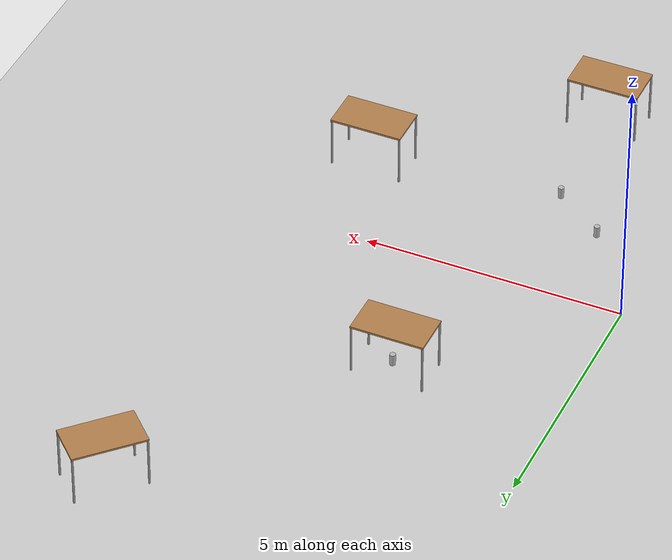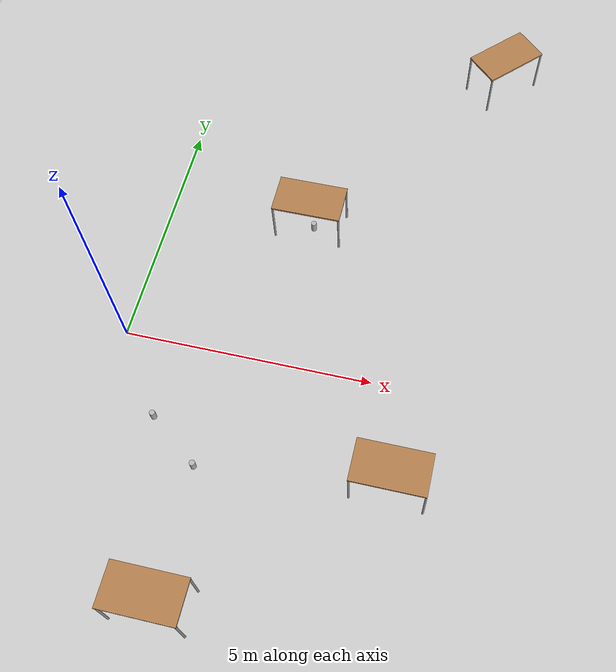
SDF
<sdf version="1.6">
 <world name="world_1">
  <light name="sun" type="directional">
   <pose>0 0 10 0 -0 0</pose>
   <diffuse>0.8 0.8 0.8 1</diffuse>
   <specular>0.1 0.1 0.1 1</specular>
   <attenuation>
    <range>1000</range>
    <constant>0.9</constant>
    <linear>0.01</linear>
    <quadratic>0.001</quadratic>
   </attenuation>
   <direction>-0.5 0.5 -1</direction>
  </light>
  <model name="ground_plane">
   <static>1</static>
   <link name="link">
    <collision name="collision">
     <geometry><plane><normal>0 0 1</normal><size>100 100</size></plane></geometry>
     <surface><friction><ode><mu>100</mu><mu2>50</mu2></ode></friction></surface>
    </collision>
    <visual name="visual">
     <cast_shadows>0</cast_shadows>
     <geometry><plane><normal>0 0 1</normal><size>100 100</size></plane></geometry>
     <material>
      <script><uri>file://media/materials/scripts/gazebo.material</uri><name>Gazebo/Grey</name></script>
     </material>
    </visual>
   </link>
  </model>
  <gravity>0 0 -9.8</gravity>
  <magnetic_field>6e-06 2.3e-05 -4.2e-05</magnetic_field>
  <atmosphere type="adiabatic"/>
  <physics name="default_physics" default="0" type="ode">
   <max_step_size>0.001</max_step_size>
   <real_time_factor>1</real_time_factor>
   <real_time_update_rate>1000</real_time_update_rate>
  </physics>
  <scene><ambient>0.4 0.4 0.4 1</ambient><background>0.7 0.7 0.7 1</background><shadows>1</shadows></scene>
  <spherical_coordinates>
   <surface_model>EARTH_WGS84</surface_model>
   <latitude_deg>0</latitude_deg>
   <longitude_deg>0</longitude_deg>
   <elevation>0</elevation>
   <heading_deg>0</heading_deg>
  </spherical_coordinates>
  <model name="table">
   <static>0</static>
   <link name="link">
    <collision name="surface">
     <pose>0 0 1 0 -0 0</pose>
     <geometry><box><size>1.5 0.8 0.03</size></box></geometry>
     <surface><friction><ode><mu>0.6</mu><mu2>0.6</mu2></ode></friction></surface>
    </collision>
    <visual name="visual1">
     <pose>0 0 1 0 -0 0</pose>
     <geometry><box><size>1.4 0.8 0.04</size></box></geometry>
     <material>
      <script><uri>file://media/materials/scripts/gazebo.material</uri><name>Gazebo/Wood</name></script>
     </material>
    </visual>
    <collision name="front_left_leg">
     <pose>0.68 0.38 0.5 0 -0 0</pose>
     <geometry><cylinder><radius>0.02</radius><length>1</length></cylinder></geometry>
    </collision>
    <visual name="front_left_leg">
     <pose>0.68 0.38 0.5 0 -0 0</pose>
     <geometry><cylinder><radius>0.02</radius><length>1</length></cylinder></geometry>
     <material>
      <script><uri>file://media/materials/scripts/gazebo.material</uri><name>Gazebo/Grey</name></script>
     </material>
    </visual>
    <collision name="front_right_leg">
     <pose>0.68 -0.38 0.5 0 -0 0</pose>
     <geometry><cylinder><radius>0.02</radius><length>1</length></cylinder></geometry>
    </collision>
    <visual name="front_right_leg">
     <pose>0.68 -0.38 0.5 0 -0 0</pose>
     <geometry><cylinder><radius>0.02</radius><length>1</length></cylinder></geometry>
     <material>
      <script><uri>file://media/materials/scripts/gazebo.material</uri><name>Gazebo/Grey</name></script>
     </material>
    </visual>
    <collision name="back_right_leg">
     <pose>-0.68 -0.38 0.5 0 -0 0</pose>
     <geometry><cylinder><radius>0.02</radius><length>1</length></cylinder></geometry>
    </collision>
    <visual name="back_right_leg">
     <pose>-0.68 -0.38 0.5 0 -0 0</pose>
     <geometry><cylinder><radius>0.02</radius><length>1</length></cylinder></geometry>
     <material>
      <script><uri>file://media/materials/scripts/gazebo.material</uri><name>Gazebo/Grey</name></script>
     </material>
    </visual>
    <collision name="back_left_leg">
     <pose>-0.68 0.38 0.5 0 -0 0</pose>
     <geometry><cylinder><radius>0.02</radius><length>1</length></cylinder></geometry>
    </collision>
    <visual name="back_left_leg">
     <pose>-0.68 0.38 0.5 0 -0 0</pose>
     <geometry><cylinder><radius>0.02</radius><length>1</length></cylinder></geometry>
     <material>
      <script><uri>file://media/materials/scripts/gazebo.material</uri><name>Gazebo/Grey</name></script>
     </material>
    </visual>
    <inertial>
     <inertia><ixx>1</ixx><ixy>0</ixy><ixz>0</ixz><iyy>1</iyy><iyz>0</iyz><izz>1</izz></inertia>
     <mass>1</mass>
    </inertial>
   </link>
   <pose>2.23628 -4.9084 0.184672 0 -0.003178 0</pose>
  </model>
  <model name="table_clone">
   <static>0</static>
   <link name="link">
    <collision name="surface">
     <pose>0 0 1 0 -0 0</pose>
     <geometry><box><size>1.5 0.8 0.03</size></box></geometry>
     <surface><friction><ode><mu>0.6</mu><mu2>0.6</mu2></ode></friction></surface>
    </collision>
    <visual name="visual1">
     <pose>0 0 1 0 -0 0</pose>
     <geometry><box><size>1.4 0.8 0.04</size></box></geometry>
     <material>
      <script><uri>file://media/materials/scripts/gazebo.material</uri><name>Gazebo/Wood</name></script>
     </material>
    </visual>
    <collision name="front_left_leg">
     <pose>0.68 0.38 0.5 0 -0 0</pose>
     <geometry><cylinder><radius>0.02</radius><length>1</length></cylinder></geometry>
    </collision>
    <visual name="front_left_leg">
     <pose>0.68 0.38 0.5 0 -0 0</pose>
     <geometry><cylinder><radius>0.02</radius><length>1</length></cylinder></geometry>
     <material>
      <script><uri>file://media/materials/scripts/gazebo.material</uri><name>Gazebo/Grey</name></script>
     </material>
    </visual>
    <collision name="front_right_leg">
     <pose>0.68 -0.38 0.5 0 -0 0</pose>
     <geometry><cylinder><radius>0.02</radius><length>1</length></cylinder></geometry>
    </collision>
    <visual name="front_right_leg">
     <pose>0.68 -0.38 0.5 0 -0 0</pose>
     <geometry><cylinder><radius>0.02</radius><length>1</length></cylinder></geometry>
     <material>
      <script><uri>file://media/materials/scripts/gazebo.material</uri><name>Gazebo/Grey</name></script>
     </material>
    </visual>
    <collision name="back_right_leg">
     <pose>-0.68 -0.38 0.5 0 -0 0</pose>
     <geometry><cylinder><radius>0.02</radius><length>1</length></cylinder></geometry>
    </collision>
    <visual name="back_right_leg">
     <pose>-0.68 -0.38 0.5 0 -0 0</pose>
     <geometry><cylinder><radius>0.02</radius><length>1</length></cylinder></geometry>
     <material>
      <script><uri>file://media/materials/scripts/gazebo.material</uri><name>Gazebo/Grey</name></script>
     </material>
    </visual>
    <collision name="back_left_leg">
     <pose>-0.68 0.38 0.5 0 -0 0</pose>
     <geometry><cylinder><radius>0.02</radius><length>1</length></cylinder></geometry>
    </collision>
    <visual name="back_left_leg">
     <pose>-0.68 0.38 0.5 0 -0 0</pose>
     <geometry><cylinder><radius>0.02</radius><length>1</length></cylinder></geometry>
     <material>
      <script><uri>file://media/materials/scripts/gazebo.material</uri><name>Gazebo/Grey</name></script>
     </material>
    </visual>
    <inertial>
     <inertia><ixx>1</ixx><ixy>0</ixy><ixz>0</ixz><iyy>1</iyy><iyz>0</iyz><izz>1</izz></inertia>
     <mass>1</mass>
    </inertial>
   </link>
   <pose>5.75509 -1.97683 0.195844 0 -0.003177 0</pose>
  </model>
  <model name="table_clone_0">
   <static>0</static>
   <link name="link">
    <collision name="surface">
     <pose>0 0 1 0 -0 0</pose>
     <geometry><box><size>1.5 0.8 0.03</size></box></geometry>
     <surface><friction><ode><mu>0.6</mu><mu2>0.6</mu2></ode></friction></surface>
    </collision>
    <visual name="visual1">
     <pose>0 0 1 0 -0 0</pose>
     <geometry><box><size>1.4 0.8 0.04</size></box></geometry>
     <material>
      <script><uri>file://media/materials/scripts/gazebo.material</uri><name>Gazebo/Wood</name></script>
     </material>
    </visual>
    <collision name="front_left_leg">
     <pose>0.68 0.38 0.5 0 -0 0</pose>
     <geometry><cylinder><radius>0.02</radius><length>1</length></cylinder></geometry>
    </collision>
    <visual name="front_left_leg">
     <pose>0.68 0.38 0.5 0 -0 0</pose>
     <geometry><cylinder><radius>0.02</radius><length>1</length></cylinder></geometry>
     <material>
      <script><uri>file://media/materials/scripts/gazebo.material</uri><name>Gazebo/Grey</name></script>
     </material>
    </visual>
    <collision name="front_right_leg">
     <pose>0.68 -0.38 0.5 0 -0 0</pose>
     <geometry><cylinder><radius>0.02</radius><length>1</length></cylinder></geometry>
    </collision>
    <visual name="front_right_leg">
     <pose>0.68 -0.38 0.5 0 -0 0</pose>
     <geometry><cylinder><radius>0.02</radius><length>1</length></cylinder></geometry>
     <material>
      <script><uri>file://media/materials/scripts/gazebo.material</uri><name>Gazebo/Grey</name></script>
     </material>
    </visual>
    <collision name="back_right_leg">
     <pose>-0.68 -0.38 0.5 0 -0 0</pose>
     <geometry><cylinder><radius>0.02</radius><length>1</length></cylinder></geometry>
    </collision>
    <visual name="back_right_leg">
     <pose>-0.68 -0.38 0.5 0 -0 0</pose>
     <geometry><cylinder><radius>0.02</radius><length>1</length></cylinder></geometry>
     <material>
      <script><uri>file://media/materials/scripts/gazebo.material</uri><name>Gazebo/Grey</name></script>
     </material>
    </visual>
    <collision name="back_left_leg">
     <pose>-0.68 0.38 0.5 0 -0 0</pose>
     <geometry><cylinder><radius>0.02</radius><length>1</length></cylinder></geometry>
    </collision>
    <visual name="back_left_leg">
     <pose>-0.68 0.38 0.5 0 -0 0</pose>
     <geometry><cylinder><radius>0.02</radius><length>1</length></cylinder></geometry>
     <material>
      <script><uri>file://media/materials/scripts/gazebo.material</uri><name>Gazebo/Grey</name></script>
     </material>
    </visual>
    <inertial>
     <inertia><ixx>1</ixx><ixy>0</ixy><ixz>0</ixz><iyy>1</iyy><iyz>0</iyz><izz>1</izz></inertia>
     <mass>1</mass>
    </inertial>
   </link>
   <pose>3.03477 3.17586 0.187202 0 -0.003177 0</pose>
  </model>
  <model name="beer">
   <link name="link">
    <pose>0 0 0.115 0 -0 0</pose>
    <inertial>
     <mass>0.39</mass>
     <inertia><ixx>0.00058</ixx><ixy>0</ixy><ixz>0</ixz><iyy>0.00058</iyy><iyz>0</iyz><izz>0.00019</izz></inertia>
    </inertial>
    <collision name="collision">
     <geometry><cylinder><radius>0.055</radius><length>0.23</length></cylinder></geometry>
    </collision>
    <visual name="visual">
     <geometry><cylinder><radius>0.055</radius><length>0.23</length></cylinder></geometry>
     <material>
      <script>
       <uri>model://beer/materials/scripts</uri>
       <uri>model://beer/materials/textures</uri>
       <name>Beer/Diffuse</name>
      </script>
     </material>
    </visual>
   </link>
   <pose>1.15387 -1.64954 0.181237 4.8e-05 -0.003214 0.001093</pose>
  </model>
  <model name="beer_0">
   <link name="link">
    <pose>0 0 0.115 0 -0 0</pose>
    <inertial>
     <mass>0.39</mass>
     <inertia><ixx>0.00058</ixx><ixy>0</ixy><ixz>0</ixz><iyy>0.00058</iyy><iyz>0</iyz><izz>0.00019</izz></inertia>
    </inertial>
    <collision name="collision">
     <geometry><cylinder><radius>0.055</radius><length>0.23</length></cylinder></geometry>
    </collision>
    <visual name="visual">
     <geometry><cylinder><radius>0.055</radius><length>0.23</length></cylinder></geometry>
     <material>
      <script>
       <uri>model://beer/materials/scripts</uri>
       <uri>model://beer/materials/textures</uri>
       <name>Beer/Diffuse</name>
      </script>
     </material>
    </visual>
   </link>
   <pose>2.17352 -2.42003 0.184464 -1e-05 -0.003167 6.3e-05</pose>
  </model>
  <model name="beer_0_clone">
   <link name="link">
    <pose>0 0 0.115 0 -0 0</pose>
    <inertial>
     <mass>0.39</mass>
     <inertia><ixx>0.00058</ixx><ixy>0</ixy><ixz>0</ixz><iyy>0.00058</iyy><iyz>0</iyz><izz>0.00019</izz></inertia>
    </inertial>
    <collision name="collision">
     <geometry><cylinder><radius>0.055</radius><length>0.23</length></cylinder></geometry>
    </collision>
    <visual name="visual">
     <geometry><cylinder><radius>0.055</radius><length>0.23</length></cylinder></geometry>
     <material>
      <script>
       <uri>model://beer/materials/scripts</uri>
       <uri>model://beer/materials/textures</uri>
       <name>Beer/Diffuse</name>
      </script>
     </material>
    </visual>
   </link>
   <pose>3.11034 3.11248 0.18744 0 -0.003176 0.000142</pose>
  </model>
  <model name="table_clone_0_clone">
   <static>0</static>
   <link name="link">
    <collision name="surface">
     <pose>0 0 1 0 -0 0</pose>
     <geometry><box><size>1.5 0.8 0.03</size></box></geometry>
     <surface><friction><ode><mu>0.6</mu><mu2>0.6</mu2></ode></friction></surface>
    </collision>
    <visual name="visual1">
     <pose>0 0 1 0 -0 0</pose>
     <geometry><box><size>1.4 0.8 0.04</size></box></geometry>
     <material>
      <script><uri>file://media/materials/scripts/gazebo.material</uri><name>Gazebo/Wood</name></script>
     </material>
    </visual>
    <collision name="front_left_leg">
     <pose>0.68 0.38 0.5 0 -0 0</pose>
     <geometry><cylinder><radius>0.02</radius><length>1</length></cylinder></geometry>
    </collision>
    <visual name="front_left_leg">
     <pose>0.68 0.38 0.5 0 -0 0</pose>
     <geometry><cylinder><radius>0.02</radius><length>1</length></cylinder></geometry>
     <material>
      <script><uri>file://media/materials/scripts/gazebo.material</uri><name>Gazebo/Grey</name></script>
     </material>
    </visual>
    <collision name="front_right_leg">
     <pose>0.68 -0.38 0.5 0 -0 0</pose>
     <geometry><cylinder><radius>0.02</radius><length>1</length></cylinder></geometry>
    </collision>
    <visual name="front_right_leg">
     <pose>0.68 -0.38 0.5 0 -0 0</pose>
     <geometry><cylinder><radius>0.02</radius><length>1</length></cylinder></geometry>
     <material>
      <script><uri>file://media/materials/scripts/gazebo.material</uri><name>Gazebo/Grey</name></script>
     </material>
    </visual>
    <collision name="back_right_leg">
     <pose>-0.68 -0.38 0.5 0 -0 0</pose>
     <geometry><cylinder><radius>0.02</radius><length>1</length></cylinder></geometry>
    </collision>
    <visual name="back_right_leg">
     <pose>-0.68 -0.38 0.5 0 -0 0</pose>
     <geometry><cylinder><radius>0.02</radius><length>1</length></cylinder></geometry>
     <material>
      <script><uri>file://media/materials/scripts/gazebo.material</uri><name>Gazebo/Grey</name></script>
     </material>
    </visual>
    <collision name="back_left_leg">
     <pose>-0.68 0.38 0.5 0 -0 0</pose>
     <geometry><cylinder><radius>0.02</radius><length>1</length></cylinder></geometry>
    </collision>
    <visual name="back_left_leg">
     <pose>-0.68 0.38 0.5 0 -0 0</pose>
     <geometry><cylinder><radius>0.02</radius><length>1</length></cylinder></geometry>
     <material>
      <script><uri>file://media/materials/scripts/gazebo.material</uri><name>Gazebo/Grey</name></script>
     </material>
    </visual>
    <inertial>
     <inertia><ixx>1</ixx><ixy>0</ixy><ixz>0</ixz><iyy>1</iyy><iyz>0</iyz><izz>1</izz></inertia>
     <mass>1</mass>
    </inertial>
   </link>
   <pose>6.39798 7.86581 0.197889 -0.002281 -0.002212 0.799662</pose>
  </model>
 </world>
</sdf>
